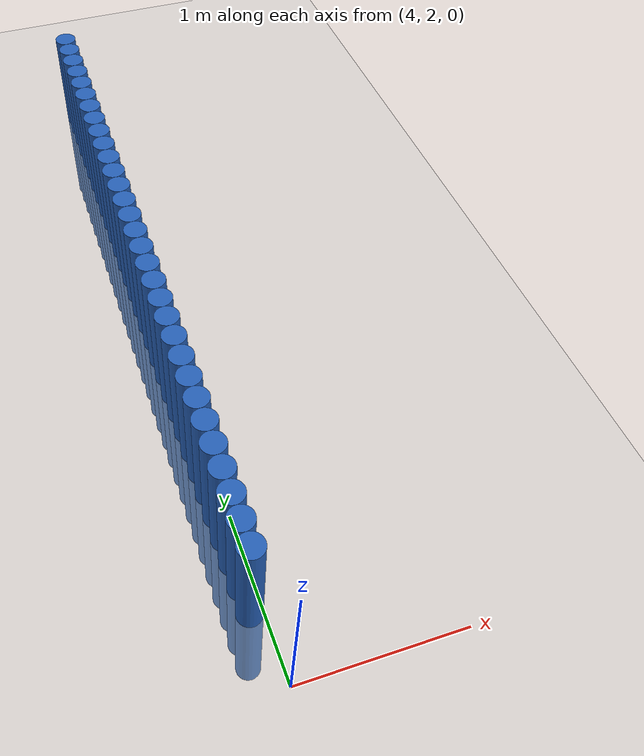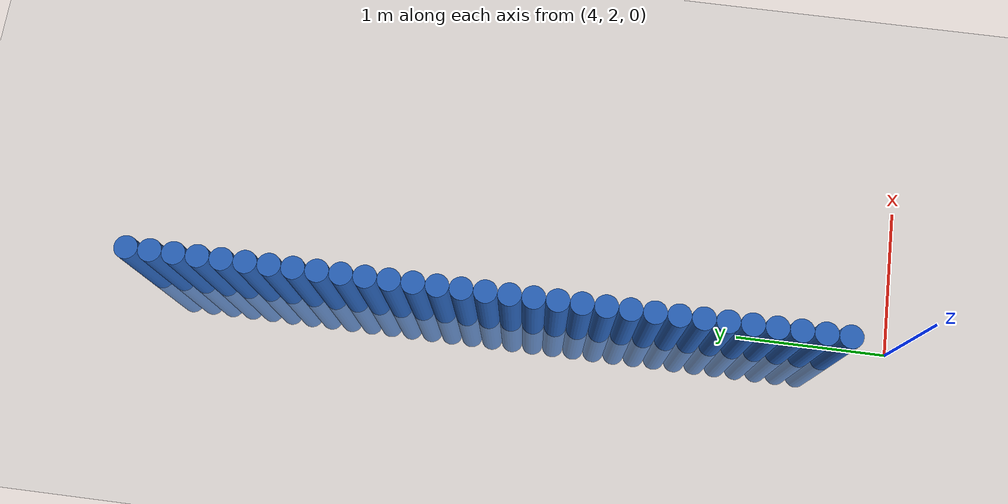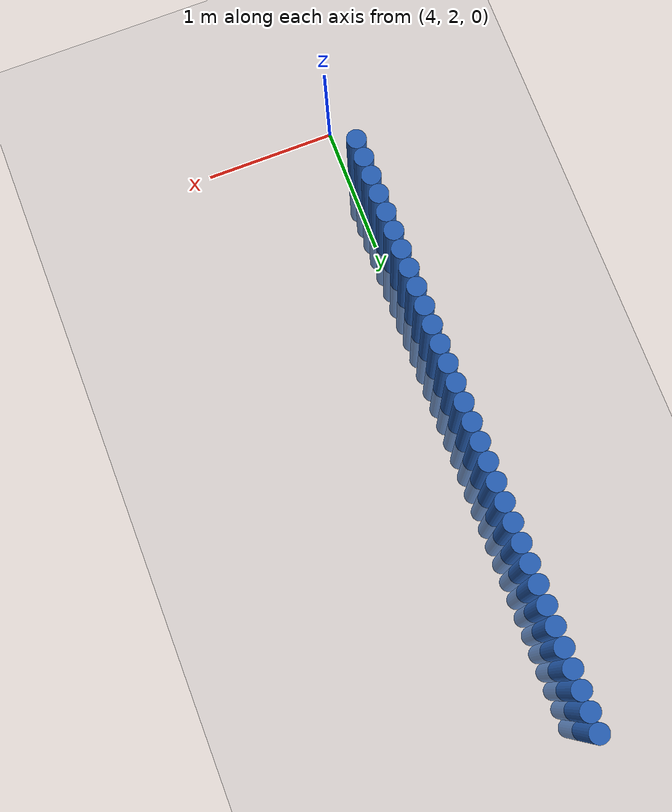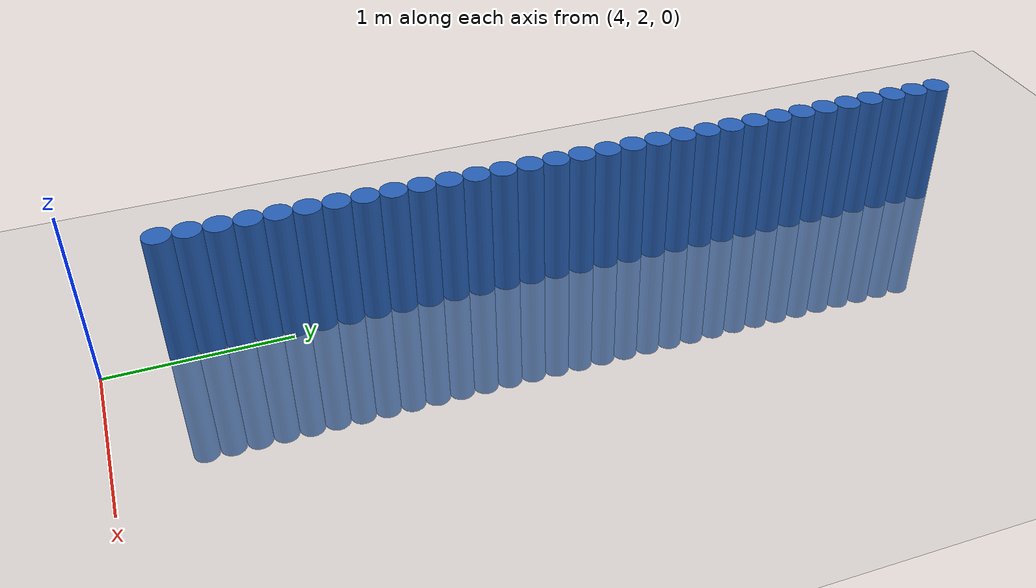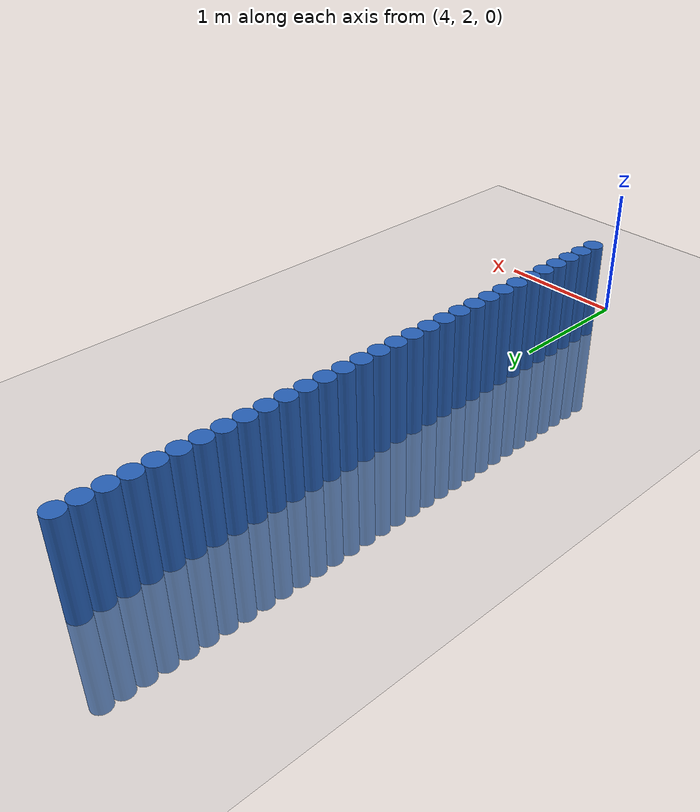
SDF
<sdf version="1.6">
 <world name="default">
  <model name="ground_plane">
   <static>1</static>
   <link name="link">
    <collision name="collision">
     <geometry><plane><normal>0 0 1</normal><size>100 100</size></plane></geometry>
     <surface><friction><ode><mu>100</mu><mu2>50</mu2></ode></friction></surface>
    </collision>
    <visual name="visual">
     <cast_shadows>0</cast_shadows>
     <geometry><plane><normal>0 0 1</normal><size>100 100</size></plane></geometry>
     <material>
      <script><uri>file://media/materials/scripts/gazebo.material</uri><name>Gazebo/Grey</name></script>
     </material>
    </visual>
   </link>
  </model>
  <model name="unit_cylinder_148">
   <static>1</static>
   <pose>3.925000 2.575000 0.000000 0.000000 0.000000 0.000000</pose>
   <link name="link">
    <inertial>
     <mass>1</mass>
     <inertia><ixx>0.145833</ixx><ixy>0</ixy><ixz>0</ixz><iyy>0.145833</iyy><iyz>0</iyz><izz>0.125</izz></inertia>
    </inertial>
    <collision name="collision">
     <geometry><cylinder><radius>0.075000</radius><length>1.5</length></cylinder></geometry>
    </collision>
    <visual name="visual">
     <geometry><cylinder><radius>0.075000</radius><length>1.5</length></cylinder></geometry>
     <material>
      <ambient>0.152000 0.379000 0.720000 1</ambient>
      <diffuse>0.152000 0.379000 0.720000 1</diffuse>
     </material>
     <material>
      <script><name>Gazebo/Grey</name><uri>file://media/materials/scripts/gazebo.material</uri></script>
     </material>
    </visual>
   </link>
  </model>
  <model name="unit_cylinder_150">
   <static>1</static>
   <pose>3.925000 2.725000 0.000000 0.000000 0.000000 0.000000</pose>
   <link name="link">
    <inertial>
     <mass>1</mass>
     <inertia><ixx>0.145833</ixx><ixy>0</ixy><ixz>0</ixz><iyy>0.145833</iyy><iyz>0</iyz><izz>0.125</izz></inertia>
    </inertial>
    <collision name="collision">
     <geometry><cylinder><radius>0.075000</radius><length>1.5</length></cylinder></geometry>
    </collision>
    <visual name="visual">
     <geometry><cylinder><radius>0.075000</radius><length>1.5</length></cylinder></geometry>
     <material>
      <ambient>0.152000 0.379000 0.720000 1</ambient>
      <diffuse>0.152000 0.379000 0.720000 1</diffuse>
     </material>
     <material>
      <script><name>Gazebo/Grey</name><uri>file://media/materials/scripts/gazebo.material</uri></script>
     </material>
    </visual>
   </link>
  </model>
  <model name="unit_cylinder_152">
   <static>1</static>
   <pose>3.925000 2.875000 0.000000 0.000000 0.000000 0.000000</pose>
   <link name="link">
    <inertial>
     <mass>1</mass>
     <inertia><ixx>0.145833</ixx><ixy>0</ixy><ixz>0</ixz><iyy>0.145833</iyy><iyz>0</iyz><izz>0.125</izz></inertia>
    </inertial>
    <collision name="collision">
     <geometry><cylinder><radius>0.075000</radius><length>1.5</length></cylinder></geometry>
    </collision>
    <visual name="visual">
     <geometry><cylinder><radius>0.075000</radius><length>1.5</length></cylinder></geometry>
     <material>
      <ambient>0.152000 0.379000 0.720000 1</ambient>
      <diffuse>0.152000 0.379000 0.720000 1</diffuse>
     </material>
     <material>
      <script><name>Gazebo/Grey</name><uri>file://media/materials/scripts/gazebo.material</uri></script>
     </material>
    </visual>
   </link>
  </model>
  <model name="unit_cylinder_154">
   <static>1</static>
   <pose>3.925000 3.025000 0.000000 0.000000 0.000000 0.000000</pose>
   <link name="link">
    <inertial>
     <mass>1</mass>
     <inertia><ixx>0.145833</ixx><ixy>0</ixy><ixz>0</ixz><iyy>0.145833</iyy><iyz>0</iyz><izz>0.125</izz></inertia>
    </inertial>
    <collision name="collision">
     <geometry><cylinder><radius>0.075000</radius><length>1.5</length></cylinder></geometry>
    </collision>
    <visual name="visual">
     <geometry><cylinder><radius>0.075000</radius><length>1.5</length></cylinder></geometry>
     <material>
      <ambient>0.152000 0.379000 0.720000 1</ambient>
      <diffuse>0.152000 0.379000 0.720000 1</diffuse>
     </material>
     <material>
      <script><name>Gazebo/Grey</name><uri>file://media/materials/scripts/gazebo.material</uri></script>
     </material>
    </visual>
   </link>
  </model>
  <model name="unit_cylinder_156">
   <static>1</static>
   <pose>3.925000 3.175000 0.000000 0.000000 0.000000 0.000000</pose>
   <link name="link">
    <inertial>
     <mass>1</mass>
     <inertia><ixx>0.145833</ixx><ixy>0</ixy><ixz>0</ixz><iyy>0.145833</iyy><iyz>0</iyz><izz>0.125</izz></inertia>
    </inertial>
    <collision name="collision">
     <geometry><cylinder><radius>0.075000</radius><length>1.5</length></cylinder></geometry>
    </collision>
    <visual name="visual">
     <geometry><cylinder><radius>0.075000</radius><length>1.5</length></cylinder></geometry>
     <material>
      <ambient>0.152000 0.379000 0.720000 1</ambient>
      <diffuse>0.152000 0.379000 0.720000 1</diffuse>
     </material>
     <material>
      <script><name>Gazebo/Grey</name><uri>file://media/materials/scripts/gazebo.material</uri></script>
     </material>
    </visual>
   </link>
  </model>
  <model name="unit_cylinder_158">
   <static>1</static>
   <pose>3.925000 3.325000 0.000000 0.000000 0.000000 0.000000</pose>
   <link name="link">
    <inertial>
     <mass>1</mass>
     <inertia><ixx>0.145833</ixx><ixy>0</ixy><ixz>0</ixz><iyy>0.145833</iyy><iyz>0</iyz><izz>0.125</izz></inertia>
    </inertial>
    <collision name="collision">
     <geometry><cylinder><radius>0.075000</radius><length>1.5</length></cylinder></geometry>
    </collision>
    <visual name="visual">
     <geometry><cylinder><radius>0.075000</radius><length>1.5</length></cylinder></geometry>
     <material>
      <ambient>0.152000 0.379000 0.720000 1</ambient>
      <diffuse>0.152000 0.379000 0.720000 1</diffuse>
     </material>
     <material>
      <script><name>Gazebo/Grey</name><uri>file://media/materials/scripts/gazebo.material</uri></script>
     </material>
    </visual>
   </link>
  </model>
  <model name="unit_cylinder_160">
   <static>1</static>
   <pose>3.925000 3.475000 0.000000 0.000000 0.000000 0.000000</pose>
   <link name="link">
    <inertial>
     <mass>1</mass>
     <inertia><ixx>0.145833</ixx><ixy>0</ixy><ixz>0</ixz><iyy>0.145833</iyy><iyz>0</iyz><izz>0.125</izz></inertia>
    </inertial>
    <collision name="collision">
     <geometry><cylinder><radius>0.075000</radius><length>1.5</length></cylinder></geometry>
    </collision>
    <visual name="visual">
     <geometry><cylinder><radius>0.075000</radius><length>1.5</length></cylinder></geometry>
     <material>
      <ambient>0.152000 0.379000 0.720000 1</ambient>
      <diffuse>0.152000 0.379000 0.720000 1</diffuse>
     </material>
     <material>
      <script><name>Gazebo/Grey</name><uri>file://media/materials/scripts/gazebo.material</uri></script>
     </material>
    </visual>
   </link>
  </model>
  <model name="unit_cylinder_162">
   <static>1</static>
   <pose>3.925000 3.625000 0.000000 0.000000 0.000000 0.000000</pose>
   <link name="link">
    <inertial>
     <mass>1</mass>
     <inertia><ixx>0.145833</ixx><ixy>0</ixy><ixz>0</ixz><iyy>0.145833</iyy><iyz>0</iyz><izz>0.125</izz></inertia>
    </inertial>
    <collision name="collision">
     <geometry><cylinder><radius>0.075000</radius><length>1.5</length></cylinder></geometry>
    </collision>
    <visual name="visual">
     <geometry><cylinder><radius>0.075000</radius><length>1.5</length></cylinder></geometry>
     <material>
      <ambient>0.152000 0.379000 0.720000 1</ambient>
      <diffuse>0.152000 0.379000 0.720000 1</diffuse>
     </material>
     <material>
      <script><name>Gazebo/Grey</name><uri>file://media/materials/scripts/gazebo.material</uri></script>
     </material>
    </visual>
   </link>
  </model>
  <model name="unit_cylinder_164">
   <static>1</static>
   <pose>3.925000 3.775000 0.000000 0.000000 0.000000 0.000000</pose>
   <link name="link">
    <inertial>
     <mass>1</mass>
     <inertia><ixx>0.145833</ixx><ixy>0</ixy><ixz>0</ixz><iyy>0.145833</iyy><iyz>0</iyz><izz>0.125</izz></inertia>
    </inertial>
    <collision name="collision">
     <geometry><cylinder><radius>0.075000</radius><length>1.5</length></cylinder></geometry>
    </collision>
    <visual name="visual">
     <geometry><cylinder><radius>0.075000</radius><length>1.5</length></cylinder></geometry>
     <material>
      <ambient>0.152000 0.379000 0.720000 1</ambient>
      <diffuse>0.152000 0.379000 0.720000 1</diffuse>
     </material>
     <material>
      <script><name>Gazebo/Grey</name><uri>file://media/materials/scripts/gazebo.material</uri></script>
     </material>
    </visual>
   </link>
  </model>
  <model name="unit_cylinder_166">
   <static>1</static>
   <pose>3.925000 3.925000 0.000000 0.000000 0.000000 0.000000</pose>
   <link name="link">
    <inertial>
     <mass>1</mass>
     <inertia><ixx>0.145833</ixx><ixy>0</ixy><ixz>0</ixz><iyy>0.145833</iyy><iyz>0</iyz><izz>0.125</izz></inertia>
    </inertial>
    <collision name="collision">
     <geometry><cylinder><radius>0.075000</radius><length>1.5</length></cylinder></geometry>
    </collision>
    <visual name="visual">
     <geometry><cylinder><radius>0.075000</radius><length>1.5</length></cylinder></geometry>
     <material>
      <ambient>0.152000 0.379000 0.720000 1</ambient>
      <diffuse>0.152000 0.379000 0.720000 1</diffuse>
     </material>
     <material>
      <script><name>Gazebo/Grey</name><uri>file://media/materials/scripts/gazebo.material</uri></script>
     </material>
    </visual>
   </link>
  </model>
  <model name="unit_cylinder_168">
   <static>1</static>
   <pose>3.925000 4.075000 0.000000 0.000000 0.000000 0.000000</pose>
   <link name="link">
    <inertial>
     <mass>1</mass>
     <inertia><ixx>0.145833</ixx><ixy>0</ixy><ixz>0</ixz><iyy>0.145833</iyy><iyz>0</iyz><izz>0.125</izz></inertia>
    </inertial>
    <collision name="collision">
     <geometry><cylinder><radius>0.075000</radius><length>1.5</length></cylinder></geometry>
    </collision>
    <visual name="visual">
     <geometry><cylinder><radius>0.075000</radius><length>1.5</length></cylinder></geometry>
     <material>
      <ambient>0.152000 0.379000 0.720000 1</ambient>
      <diffuse>0.152000 0.379000 0.720000 1</diffuse>
     </material>
     <material>
      <script><name>Gazebo/Grey</name><uri>file://media/materials/scripts/gazebo.material</uri></script>
     </material>
    </visual>
   </link>
  </model>
  <model name="unit_cylinder_170">
   <static>1</static>
   <pose>3.925000 4.225000 0.000000 0.000000 0.000000 0.000000</pose>
   <link name="link">
    <inertial>
     <mass>1</mass>
     <inertia><ixx>0.145833</ixx><ixy>0</ixy><ixz>0</ixz><iyy>0.145833</iyy><iyz>0</iyz><izz>0.125</izz></inertia>
    </inertial>
    <collision name="collision">
     <geometry><cylinder><radius>0.075000</radius><length>1.5</length></cylinder></geometry>
    </collision>
    <visual name="visual">
     <geometry><cylinder><radius>0.075000</radius><length>1.5</length></cylinder></geometry>
     <material>
      <ambient>0.152000 0.379000 0.720000 1</ambient>
      <diffuse>0.152000 0.379000 0.720000 1</diffuse>
     </material>
     <material>
      <script><name>Gazebo/Grey</name><uri>file://media/materials/scripts/gazebo.material</uri></script>
     </material>
    </visual>
   </link>
  </model>
  <model name="unit_cylinder_172">
   <static>1</static>
   <pose>3.925000 4.375000 0.000000 0.000000 0.000000 0.000000</pose>
   <link name="link">
    <inertial>
     <mass>1</mass>
     <inertia><ixx>0.145833</ixx><ixy>0</ixy><ixz>0</ixz><iyy>0.145833</iyy><iyz>0</iyz><izz>0.125</izz></inertia>
    </inertial>
    <collision name="collision">
     <geometry><cylinder><radius>0.075000</radius><length>1.5</length></cylinder></geometry>
    </collision>
    <visual name="visual">
     <geometry><cylinder><radius>0.075000</radius><length>1.5</length></cylinder></geometry>
     <material>
      <ambient>0.152000 0.379000 0.720000 1</ambient>
      <diffuse>0.152000 0.379000 0.720000 1</diffuse>
     </material>
     <material>
      <script><name>Gazebo/Grey</name><uri>file://media/materials/scripts/gazebo.material</uri></script>
     </material>
    </visual>
   </link>
  </model>
  <model name="unit_cylinder_174">
   <static>1</static>
   <pose>3.925000 4.525000 0.000000 0.000000 0.000000 0.000000</pose>
   <link name="link">
    <inertial>
     <mass>1</mass>
     <inertia><ixx>0.145833</ixx><ixy>0</ixy><ixz>0</ixz><iyy>0.145833</iyy><iyz>0</iyz><izz>0.125</izz></inertia>
    </inertial>
    <collision name="collision">
     <geometry><cylinder><radius>0.075000</radius><length>1.5</length></cylinder></geometry>
    </collision>
    <visual name="visual">
     <geometry><cylinder><radius>0.075000</radius><length>1.5</length></cylinder></geometry>
     <material>
      <ambient>0.152000 0.379000 0.720000 1</ambient>
      <diffuse>0.152000 0.379000 0.720000 1</diffuse>
     </material>
     <material>
      <script><name>Gazebo/Grey</name><uri>file://media/materials/scripts/gazebo.material</uri></script>
     </material>
    </visual>
   </link>
  </model>
  <model name="unit_cylinder_176">
   <static>1</static>
   <pose>3.925000 4.675000 0.000000 0.000000 0.000000 0.000000</pose>
   <link name="link">
    <inertial>
     <mass>1</mass>
     <inertia><ixx>0.145833</ixx><ixy>0</ixy><ixz>0</ixz><iyy>0.145833</iyy><iyz>0</iyz><izz>0.125</izz></inertia>
    </inertial>
    <collision name="collision">
     <geometry><cylinder><radius>0.075000</radius><length>1.5</length></cylinder></geometry>
    </collision>
    <visual name="visual">
     <geometry><cylinder><radius>0.075000</radius><length>1.5</length></cylinder></geometry>
     <material>
      <ambient>0.152000 0.379000 0.720000 1</ambient>
      <diffuse>0.152000 0.379000 0.720000 1</diffuse>
     </material>
     <material>
      <script><name>Gazebo/Grey</name><uri>file://media/materials/scripts/gazebo.material</uri></script>
     </material>
    </visual>
   </link>
  </model>
  <model name="unit_cylinder_178">
   <static>1</static>
   <pose>3.925000 4.825000 0.000000 0.000000 0.000000 0.000000</pose>
   <link name="link">
    <inertial>
     <mass>1</mass>
     <inertia><ixx>0.145833</ixx><ixy>0</ixy><ixz>0</ixz><iyy>0.145833</iyy><iyz>0</iyz><izz>0.125</izz></inertia>
    </inertial>
    <collision name="collision">
     <geometry><cylinder><radius>0.075000</radius><length>1.5</length></cylinder></geometry>
    </collision>
    <visual name="visual">
     <geometry><cylinder><radius>0.075000</radius><length>1.5</length></cylinder></geometry>
     <material>
      <ambient>0.152000 0.379000 0.720000 1</ambient>
      <diffuse>0.152000 0.379000 0.720000 1</diffuse>
     </material>
     <material>
      <script><name>Gazebo/Grey</name><uri>file://media/materials/scripts/gazebo.material</uri></script>
     </material>
    </visual>
   </link>
  </model>
  <model name="unit_cylinder_180">
   <static>1</static>
   <pose>3.925000 4.975000 0.000000 0.000000 0.000000 0.000000</pose>
   <link name="link">
    <inertial>
     <mass>1</mass>
     <inertia><ixx>0.145833</ixx><ixy>0</ixy><ixz>0</ixz><iyy>0.145833</iyy><iyz>0</iyz><izz>0.125</izz></inertia>
    </inertial>
    <collision name="collision">
     <geometry><cylinder><radius>0.075000</radius><length>1.5</length></cylinder></geometry>
    </collision>
    <visual name="visual">
     <geometry><cylinder><radius>0.075000</radius><length>1.5</length></cylinder></geometry>
     <material>
      <ambient>0.152000 0.379000 0.720000 1</ambient>
      <diffuse>0.152000 0.379000 0.720000 1</diffuse>
     </material>
     <material>
      <script><name>Gazebo/Grey</name><uri>file://media/materials/scripts/gazebo.material</uri></script>
     </material>
    </visual>
   </link>
  </model>
  <model name="unit_cylinder_182">
   <static>1</static>
   <pose>3.925000 5.125000 0.000000 0.000000 0.000000 0.000000</pose>
   <link name="link">
    <inertial>
     <mass>1</mass>
     <inertia><ixx>0.145833</ixx><ixy>0</ixy><ixz>0</ixz><iyy>0.145833</iyy><iyz>0</iyz><izz>0.125</izz></inertia>
    </inertial>
    <collision name="collision">
     <geometry><cylinder><radius>0.075000</radius><length>1.5</length></cylinder></geometry>
    </collision>
    <visual name="visual">
     <geometry><cylinder><radius>0.075000</radius><length>1.5</length></cylinder></geometry>
     <material>
      <ambient>0.152000 0.379000 0.720000 1</ambient>
      <diffuse>0.152000 0.379000 0.720000 1</diffuse>
     </material>
     <material>
      <script><name>Gazebo/Grey</name><uri>file://media/materials/scripts/gazebo.material</uri></script>
     </material>
    </visual>
   </link>
  </model>
  <model name="unit_cylinder_184">
   <static>1</static>
   <pose>3.925000 5.275000 0.000000 0.000000 0.000000 0.000000</pose>
   <link name="link">
    <inertial>
     <mass>1</mass>
     <inertia><ixx>0.145833</ixx><ixy>0</ixy><ixz>0</ixz><iyy>0.145833</iyy><iyz>0</iyz><izz>0.125</izz></inertia>
    </inertial>
    <collision name="collision">
     <geometry><cylinder><radius>0.075000</radius><length>1.5</length></cylinder></geometry>
    </collision>
    <visual name="visual">
     <geometry><cylinder><radius>0.075000</radius><length>1.5</length></cylinder></geometry>
     <material>
      <ambient>0.152000 0.379000 0.720000 1</ambient>
      <diffuse>0.152000 0.379000 0.720000 1</diffuse>
     </material>
     <material>
      <script><name>Gazebo/Grey</name><uri>file://media/materials/scripts/gazebo.material</uri></script>
     </material>
    </visual>
   </link>
  </model>
  <model name="unit_cylinder_186">
   <static>1</static>
   <pose>3.925000 5.425000 0.000000 0.000000 0.000000 0.000000</pose>
   <link name="link">
    <inertial>
     <mass>1</mass>
     <inertia><ixx>0.145833</ixx><ixy>0</ixy><ixz>0</ixz><iyy>0.145833</iyy><iyz>0</iyz><izz>0.125</izz></inertia>
    </inertial>
    <collision name="collision">
     <geometry><cylinder><radius>0.075000</radius><length>1.5</length></cylinder></geometry>
    </collision>
    <visual name="visual">
     <geometry><cylinder><radius>0.075000</radius><length>1.5</length></cylinder></geometry>
     <material>
      <ambient>0.152000 0.379000 0.720000 1</ambient>
      <diffuse>0.152000 0.379000 0.720000 1</diffuse>
     </material>
     <material>
      <script><name>Gazebo/Grey</name><uri>file://media/materials/scripts/gazebo.material</uri></script>
     </material>
    </visual>
   </link>
  </model>
  <model name="unit_cylinder_188">
   <static>1</static>
   <pose>3.925000 5.575000 0.000000 0.000000 0.000000 0.000000</pose>
   <link name="link">
    <inertial>
     <mass>1</mass>
     <inertia><ixx>0.145833</ixx><ixy>0</ixy><ixz>0</ixz><iyy>0.145833</iyy><iyz>0</iyz><izz>0.125</izz></inertia>
    </inertial>
    <collision name="collision">
     <geometry><cylinder><radius>0.075000</radius><length>1.5</length></cylinder></geometry>
    </collision>
    <visual name="visual">
     <geometry><cylinder><radius>0.075000</radius><length>1.5</length></cylinder></geometry>
     <material>
      <ambient>0.152000 0.379000 0.720000 1</ambient>
      <diffuse>0.152000 0.379000 0.720000 1</diffuse>
     </material>
     <material>
      <script><name>Gazebo/Grey</name><uri>file://media/materials/scripts/gazebo.material</uri></script>
     </material>
    </visual>
   </link>
  </model>
  <model name="unit_cylinder_190">
   <static>1</static>
   <pose>3.925000 5.725000 0.000000 0.000000 0.000000 0.000000</pose>
   <link name="link">
    <inertial>
     <mass>1</mass>
     <inertia><ixx>0.145833</ixx><ixy>0</ixy><ixz>0</ixz><iyy>0.145833</iyy><iyz>0</iyz><izz>0.125</izz></inertia>
    </inertial>
    <collision name="collision">
     <geometry><cylinder><radius>0.075000</radius><length>1.5</length></cylinder></geometry>
    </collision>
    <visual name="visual">
     <geometry><cylinder><radius>0.075000</radius><length>1.5</length></cylinder></geometry>
     <material>
      <ambient>0.152000 0.379000 0.720000 1</ambient>
      <diffuse>0.152000 0.379000 0.720000 1</diffuse>
     </material>
     <material>
      <script><name>Gazebo/Grey</name><uri>file://media/materials/scripts/gazebo.material</uri></script>
     </material>
    </visual>
   </link>
  </model>
  <model name="unit_cylinder_192">
   <static>1</static>
   <pose>3.925000 5.875000 0.000000 0.000000 0.000000 0.000000</pose>
   <link name="link">
    <inertial>
     <mass>1</mass>
     <inertia><ixx>0.145833</ixx><ixy>0</ixy><ixz>0</ixz><iyy>0.145833</iyy><iyz>0</iyz><izz>0.125</izz></inertia>
    </inertial>
    <collision name="collision">
     <geometry><cylinder><radius>0.075000</radius><length>1.5</length></cylinder></geometry>
    </collision>
    <visual name="visual">
     <geometry><cylinder><radius>0.075000</radius><length>1.5</length></cylinder></geometry>
     <material>
      <ambient>0.152000 0.379000 0.720000 1</ambient>
      <diffuse>0.152000 0.379000 0.720000 1</diffuse>
     </material>
     <material>
      <script><name>Gazebo/Grey</name><uri>file://media/materials/scripts/gazebo.material</uri></script>
     </material>
    </visual>
   </link>
  </model>
  <model name="unit_cylinder_194">
   <static>1</static>
   <pose>3.925000 6.025000 0.000000 0.000000 0.000000 0.000000</pose>
   <link name="link">
    <inertial>
     <mass>1</mass>
     <inertia><ixx>0.145833</ixx><ixy>0</ixy><ixz>0</ixz><iyy>0.145833</iyy><iyz>0</iyz><izz>0.125</izz></inertia>
    </inertial>
    <collision name="collision">
     <geometry><cylinder><radius>0.075000</radius><length>1.5</length></cylinder></geometry>
    </collision>
    <visual name="visual">
     <geometry><cylinder><radius>0.075000</radius><length>1.5</length></cylinder></geometry>
     <material>
      <ambient>0.152000 0.379000 0.720000 1</ambient>
      <diffuse>0.152000 0.379000 0.720000 1</diffuse>
     </material>
     <material>
      <script><name>Gazebo/Grey</name><uri>file://media/materials/scripts/gazebo.material</uri></script>
     </material>
    </visual>
   </link>
  </model>
  <model name="unit_cylinder_196">
   <static>1</static>
   <pose>3.925000 6.175000 0.000000 0.000000 0.000000 0.000000</pose>
   <link name="link">
    <inertial>
     <mass>1</mass>
     <inertia><ixx>0.145833</ixx><ixy>0</ixy><ixz>0</ixz><iyy>0.145833</iyy><iyz>0</iyz><izz>0.125</izz></inertia>
    </inertial>
    <collision name="collision">
     <geometry><cylinder><radius>0.075000</radius><length>1.5</length></cylinder></geometry>
    </collision>
    <visual name="visual">
     <geometry><cylinder><radius>0.075000</radius><length>1.5</length></cylinder></geometry>
     <material>
      <ambient>0.152000 0.379000 0.720000 1</ambient>
      <diffuse>0.152000 0.379000 0.720000 1</diffuse>
     </material>
     <material>
      <script><name>Gazebo/Grey</name><uri>file://media/materials/scripts/gazebo.material</uri></script>
     </material>
    </visual>
   </link>
  </model>
  <model name="unit_cylinder_198">
   <static>1</static>
   <pose>3.925000 6.325000 0.000000 0.000000 0.000000 0.000000</pose>
   <link name="link">
    <inertial>
     <mass>1</mass>
     <inertia><ixx>0.145833</ixx><ixy>0</ixy><ixz>0</ixz><iyy>0.145833</iyy><iyz>0</iyz><izz>0.125</izz></inertia>
    </inertial>
    <collision name="collision">
     <geometry><cylinder><radius>0.075000</radius><length>1.5</length></cylinder></geometry>
    </collision>
    <visual name="visual">
     <geometry><cylinder><radius>0.075000</radius><length>1.5</length></cylinder></geometry>
     <material>
      <ambient>0.152000 0.379000 0.720000 1</ambient>
      <diffuse>0.152000 0.379000 0.720000 1</diffuse>
     </material>
     <material>
      <script><name>Gazebo/Grey</name><uri>file://media/materials/scripts/gazebo.material</uri></script>
     </material>
    </visual>
   </link>
  </model>
  <model name="unit_cylinder_200">
   <static>1</static>
   <pose>3.925000 6.475000 0.000000 0.000000 0.000000 0.000000</pose>
   <link name="link">
    <inertial>
     <mass>1</mass>
     <inertia><ixx>0.145833</ixx><ixy>0</ixy><ixz>0</ixz><iyy>0.145833</iyy><iyz>0</iyz><izz>0.125</izz></inertia>
    </inertial>
    <collision name="collision">
     <geometry><cylinder><radius>0.075000</radius><length>1.5</length></cylinder></geometry>
    </collision>
    <visual name="visual">
     <geometry><cylinder><radius>0.075000</radius><length>1.5</length></cylinder></geometry>
     <material>
      <ambient>0.152000 0.379000 0.720000 1</ambient>
      <diffuse>0.152000 0.379000 0.720000 1</diffuse>
     </material>
     <material>
      <script><name>Gazebo/Grey</name><uri>file://media/materials/scripts/gazebo.material</uri></script>
     </material>
    </visual>
   </link>
  </model>
  <model name="unit_cylinder_202">
   <static>1</static>
   <pose>3.925000 6.625000 0.000000 0.000000 0.000000 0.000000</pose>
   <link name="link">
    <inertial>
     <mass>1</mass>
     <inertia><ixx>0.145833</ixx><ixy>0</ixy><ixz>0</ixz><iyy>0.145833</iyy><iyz>0</iyz><izz>0.125</izz></inertia>
    </inertial>
    <collision name="collision">
     <geometry><cylinder><radius>0.075000</radius><length>1.5</length></cylinder></geometry>
    </collision>
    <visual name="visual">
     <geometry><cylinder><radius>0.075000</radius><length>1.5</length></cylinder></geometry>
     <material>
      <ambient>0.152000 0.379000 0.720000 1</ambient>
      <diffuse>0.152000 0.379000 0.720000 1</diffuse>
     </material>
     <material>
      <script><name>Gazebo/Grey</name><uri>file://media/materials/scripts/gazebo.material</uri></script>
     </material>
    </visual>
   </link>
  </model>
  <model name="unit_cylinder_204">
   <static>1</static>
   <pose>3.925000 6.775000 0.000000 0.000000 0.000000 0.000000</pose>
   <link name="link">
    <inertial>
     <mass>1</mass>
     <inertia><ixx>0.145833</ixx><ixy>0</ixy><ixz>0</ixz><iyy>0.145833</iyy><iyz>0</iyz><izz>0.125</izz></inertia>
    </inertial>
    <collision name="collision">
     <geometry><cylinder><radius>0.075000</radius><length>1.5</length></cylinder></geometry>
    </collision>
    <visual name="visual">
     <geometry><cylinder><radius>0.075000</radius><length>1.5</length></cylinder></geometry>
     <material>
      <ambient>0.152000 0.379000 0.720000 1</ambient>
      <diffuse>0.152000 0.379000 0.720000 1</diffuse>
     </material>
     <material>
      <script><name>Gazebo/Grey</name><uri>file://media/materials/scripts/gazebo.material</uri></script>
     </material>
    </visual>
   </link>
  </model>
  <model name="unit_cylinder_206">
   <static>1</static>
   <pose>3.925000 6.925000 0.000000 0.000000 0.000000 0.000000</pose>
   <link name="link">
    <inertial>
     <mass>1</mass>
     <inertia><ixx>0.145833</ixx><ixy>0</ixy><ixz>0</ixz><iyy>0.145833</iyy><iyz>0</iyz><izz>0.125</izz></inertia>
    </inertial>
    <collision name="collision">
     <geometry><cylinder><radius>0.075000</radius><length>1.5</length></cylinder></geometry>
    </collision>
    <visual name="visual">
     <geometry><cylinder><radius>0.075000</radius><length>1.5</length></cylinder></geometry>
     <material>
      <ambient>0.152000 0.379000 0.720000 1</ambient>
      <diffuse>0.152000 0.379000 0.720000 1</diffuse>
     </material>
     <material>
      <script><name>Gazebo/Grey</name><uri>file://media/materials/scripts/gazebo.material</uri></script>
     </material>
    </visual>
   </link>
  </model>
  <model name="unit_cylinder_540">
   <static>1</static>
   <pose>3.925000 2.425000 0.000000 0.000000 0.000000 0.000000</pose>
   <link name="link">
    <inertial>
     <mass>1</mass>
     <inertia><ixx>0.145833</ixx><ixy>0</ixy><ixz>0</ixz><iyy>0.145833</iyy><iyz>0</iyz><izz>0.125</izz></inertia>
    </inertial>
    <collision name="collision">
     <geometry><cylinder><radius>0.075000</radius><length>1.5</length></cylinder></geometry>
    </collision>
    <visual name="visual">
     <geometry><cylinder><radius>0.075000</radius><length>1.5</length></cylinder></geometry>
     <material>
      <ambient>0.152000 0.379000 0.720000 1</ambient>
      <diffuse>0.152000 0.379000 0.720000 1</diffuse>
     </material>
     <material>
      <script><name>Gazebo/Grey</name><uri>file://media/materials/scripts/gazebo.material</uri></script>
     </material>
    </visual>
   </link>
  </model>
  <model name="unit_cylinder_541">
   <static>1</static>
   <pose>3.925000 2.575000 0.000000 0.000000 0.000000 0.000000</pose>
   <link name="link">
    <inertial>
     <mass>1</mass>
     <inertia><ixx>0.145833</ixx><ixy>0</ixy><ixz>0</ixz><iyy>0.145833</iyy><iyz>0</iyz><izz>0.125</izz></inertia>
    </inertial>
    <collision name="collision">
     <geometry><cylinder><radius>0.075000</radius><length>1.5</length></cylinder></geometry>
    </collision>
    <visual name="visual">
     <geometry><cylinder><radius>0.075000</radius><length>1.5</length></cylinder></geometry>
     <material>
      <ambient>0.152000 0.379000 0.720000 1</ambient>
      <diffuse>0.152000 0.379000 0.720000 1</diffuse>
     </material>
     <material>
      <script><name>Gazebo/Grey</name><uri>file://media/materials/scripts/gazebo.material</uri></script>
     </material>
    </visual>
   </link>
  </model>
  <model name="unit_cylinder_542">
   <static>1</static>
   <pose>3.925000 2.725000 0.000000 0.000000 0.000000 0.000000</pose>
   <link name="link">
    <inertial>
     <mass>1</mass>
     <inertia><ixx>0.145833</ixx><ixy>0</ixy><ixz>0</ixz><iyy>0.145833</iyy><iyz>0</iyz><izz>0.125</izz></inertia>
    </inertial>
    <collision name="collision">
     <geometry><cylinder><radius>0.075000</radius><length>1.5</length></cylinder></geometry>
    </collision>
    <visual name="visual">
     <geometry><cylinder><radius>0.075000</radius><length>1.5</length></cylinder></geometry>
     <material>
      <ambient>0.152000 0.379000 0.720000 1</ambient>
      <diffuse>0.152000 0.379000 0.720000 1</diffuse>
     </material>
     <material>
      <script><name>Gazebo/Grey</name><uri>file://media/materials/scripts/gazebo.material</uri></script>
     </material>
    </visual>
   </link>
  </model>
  <model name="unit_cylinder_543">
   <static>1</static>
   <pose>3.925000 2.875000 0.000000 0.000000 0.000000 0.000000</pose>
   <link name="link">
    <inertial>
     <mass>1</mass>
     <inertia><ixx>0.145833</ixx><ixy>0</ixy><ixz>0</ixz><iyy>0.145833</iyy><iyz>0</iyz><izz>0.125</izz></inertia>
    </inertial>
    <collision name="collision">
     <geometry><cylinder><radius>0.075000</radius><length>1.5</length></cylinder></geometry>
    </collision>
    <visual name="visual">
     <geometry><cylinder><radius>0.075000</radius><length>1.5</length></cylinder></geometry>
     <material>
      <ambient>0.152000 0.379000 0.720000 1</ambient>
      <diffuse>0.152000 0.379000 0.720000 1</diffuse>
     </material>
     <material>
      <script><name>Gazebo/Grey</name><uri>file://media/materials/scripts/gazebo.material</uri></script>
     </material>
    </visual>
   </link>
  </model>
  <model name="unit_cylinder_544">
   <static>1</static>
   <pose>3.925000 3.025000 0.000000 0.000000 0.000000 0.000000</pose>
   <link name="link">
    <inertial>
     <mass>1</mass>
     <inertia><ixx>0.145833</ixx><ixy>0</ixy><ixz>0</ixz><iyy>0.145833</iyy><iyz>0</iyz><izz>0.125</izz></inertia>
    </inertial>
    <collision name="collision">
     <geometry><cylinder><radius>0.075000</radius><length>1.5</length></cylinder></geometry>
    </collision>
    <visual name="visual">
     <geometry><cylinder><radius>0.075000</radius><length>1.5</length></cylinder></geometry>
     <material>
      <ambient>0.152000 0.379000 0.720000 1</ambient>
      <diffuse>0.152000 0.379000 0.720000 1</diffuse>
     </material>
     <material>
      <script><name>Gazebo/Grey</name><uri>file://media/materials/scripts/gazebo.material</uri></script>
     </material>
    </visual>
   </link>
  </model>
  <model name="unit_cylinder_545">
   <static>1</static>
   <pose>3.925000 3.175000 0.000000 0.000000 0.000000 0.000000</pose>
   <link name="link">
    <inertial>
     <mass>1</mass>
     <inertia><ixx>0.145833</ixx><ixy>0</ixy><ixz>0</ixz><iyy>0.145833</iyy><iyz>0</iyz><izz>0.125</izz></inertia>
    </inertial>
    <collision name="collision">
     <geometry><cylinder><radius>0.075000</radius><length>1.5</length></cylinder></geometry>
    </collision>
    <visual name="visual">
     <geometry><cylinder><radius>0.075000</radius><length>1.5</length></cylinder></geometry>
     <material>
      <ambient>0.152000 0.379000 0.720000 1</ambient>
      <diffuse>0.152000 0.379000 0.720000 1</diffuse>
     </material>
     <material>
      <script><name>Gazebo/Grey</name><uri>file://media/materials/scripts/gazebo.material</uri></script>
     </material>
    </visual>
   </link>
  </model>
  <model name="unit_cylinder_546">
   <static>1</static>
   <pose>3.925000 3.325000 0.000000 0.000000 0.000000 0.000000</pose>
   <link name="link">
    <inertial>
     <mass>1</mass>
     <inertia><ixx>0.145833</ixx><ixy>0</ixy><ixz>0</ixz><iyy>0.145833</iyy><iyz>0</iyz><izz>0.125</izz></inertia>
    </inertial>
    <collision name="collision">
     <geometry><cylinder><radius>0.075000</radius><length>1.5</length></cylinder></geometry>
    </collision>
    <visual name="visual">
     <geometry><cylinder><radius>0.075000</radius><length>1.5</length></cylinder></geometry>
     <material>
      <ambient>0.152000 0.379000 0.720000 1</ambient>
      <diffuse>0.152000 0.379000 0.720000 1</diffuse>
     </material>
     <material>
      <script><name>Gazebo/Grey</name><uri>file://media/materials/scripts/gazebo.material</uri></script>
     </material>
    </visual>
   </link>
  </model>
  <model name="unit_cylinder_547">
   <static>1</static>
   <pose>3.925000 3.475000 0.000000 0.000000 0.000000 0.000000</pose>
   <link name="link">
    <inertial>
     <mass>1</mass>
     <inertia><ixx>0.145833</ixx><ixy>0</ixy><ixz>0</ixz><iyy>0.145833</iyy><iyz>0</iyz><izz>0.125</izz></inertia>
    </inertial>
    <collision name="collision">
     <geometry><cylinder><radius>0.075000</radius><length>1.5</length></cylinder></geometry>
    </collision>
    <visual name="visual">
     <geometry><cylinder><radius>0.075000</radius><length>1.5</length></cylinder></geometry>
     <material>
      <ambient>0.152000 0.379000 0.720000 1</ambient>
      <diffuse>0.152000 0.379000 0.720000 1</diffuse>
     </material>
     <material>
      <script><name>Gazebo/Grey</name><uri>file://media/materials/scripts/gazebo.material</uri></script>
     </material>
    </visual>
   </link>
  </model>
  <model name="unit_cylinder_548">
   <static>1</static>
   <pose>3.925000 3.625000 0.000000 0.000000 0.000000 0.000000</pose>
   <link name="link">
    <inertial>
     <mass>1</mass>
     <inertia><ixx>0.145833</ixx><ixy>0</ixy><ixz>0</ixz><iyy>0.145833</iyy><iyz>0</iyz><izz>0.125</izz></inertia>
    </inertial>
    <collision name="collision">
     <geometry><cylinder><radius>0.075000</radius><length>1.5</length></cylinder></geometry>
    </collision>
    <visual name="visual">
     <geometry><cylinder><radius>0.075000</radius><length>1.5</length></cylinder></geometry>
     <material>
      <ambient>0.152000 0.379000 0.720000 1</ambient>
      <diffuse>0.152000 0.379000 0.720000 1</diffuse>
     </material>
     <material>
      <script><name>Gazebo/Grey</name><uri>file://media/materials/scripts/gazebo.material</uri></script>
     </material>
    </visual>
   </link>
  </model>
  <model name="unit_cylinder_549">
   <static>1</static>
   <pose>3.925000 3.775000 0.000000 0.000000 0.000000 0.000000</pose>
   <link name="link">
    <inertial>
     <mass>1</mass>
     <inertia><ixx>0.145833</ixx><ixy>0</ixy><ixz>0</ixz><iyy>0.145833</iyy><iyz>0</iyz><izz>0.125</izz></inertia>
    </inertial>
    <collision name="collision">
     <geometry><cylinder><radius>0.075000</radius><length>1.5</length></cylinder></geometry>
    </collision>
    <visual name="visual">
     <geometry><cylinder><radius>0.075000</radius><length>1.5</length></cylinder></geometry>
     <material>
      <ambient>0.152000 0.379000 0.720000 1</ambient>
      <diffuse>0.152000 0.379000 0.720000 1</diffuse>
     </material>
     <material>
      <script><name>Gazebo/Grey</name><uri>file://media/materials/scripts/gazebo.material</uri></script>
     </material>
    </visual>
   </link>
  </model>
  <model name="unit_cylinder_550">
   <static>1</static>
   <pose>3.925000 3.925000 0.000000 0.000000 0.000000 0.000000</pose>
   <link name="link">
    <inertial>
     <mass>1</mass>
     <inertia><ixx>0.145833</ixx><ixy>0</ixy><ixz>0</ixz><iyy>0.145833</iyy><iyz>0</iyz><izz>0.125</izz></inertia>
    </inertial>
    <collision name="collision">
     <geometry><cylinder><radius>0.075000</radius><length>1.5</length></cylinder></geometry>
    </collision>
    <visual name="visual">
     <geometry><cylinder><radius>0.075000</radius><length>1.5</length></cylinder></geometry>
     <material>
      <ambient>0.152000 0.379000 0.720000 1</ambient>
      <diffuse>0.152000 0.379000 0.720000 1</diffuse>
     </material>
     <material>
      <script><name>Gazebo/Grey</name><uri>file://media/materials/scripts/gazebo.material</uri></script>
     </material>
    </visual>
   </link>
  </model>
  <model name="unit_cylinder_551">
   <static>1</static>
   <pose>3.925000 4.075000 0.000000 0.000000 0.000000 0.000000</pose>
   <link name="link">
    <inertial>
     <mass>1</mass>
     <inertia><ixx>0.145833</ixx><ixy>0</ixy><ixz>0</ixz><iyy>0.145833</iyy><iyz>0</iyz><izz>0.125</izz></inertia>
    </inertial>
    <collision name="collision">
     <geometry><cylinder><radius>0.075000</radius><length>1.5</length></cylinder></geometry>
    </collision>
    <visual name="visual">
     <geometry><cylinder><radius>0.075000</radius><length>1.5</length></cylinder></geometry>
     <material>
      <ambient>0.152000 0.379000 0.720000 1</ambient>
      <diffuse>0.152000 0.379000 0.720000 1</diffuse>
     </material>
     <material>
      <script><name>Gazebo/Grey</name><uri>file://media/materials/scripts/gazebo.material</uri></script>
     </material>
    </visual>
   </link>
  </model>
  <model name="unit_cylinder_552">
   <static>1</static>
   <pose>3.925000 4.225000 0.000000 0.000000 0.000000 0.000000</pose>
   <link name="link">
    <inertial>
     <mass>1</mass>
     <inertia><ixx>0.145833</ixx><ixy>0</ixy><ixz>0</ixz><iyy>0.145833</iyy><iyz>0</iyz><izz>0.125</izz></inertia>
    </inertial>
    <collision name="collision">
     <geometry><cylinder><radius>0.075000</radius><length>1.5</length></cylinder></geometry>
    </collision>
    <visual name="visual">
     <geometry><cylinder><radius>0.075000</radius><length>1.5</length></cylinder></geometry>
     <material>
      <ambient>0.152000 0.379000 0.720000 1</ambient>
      <diffuse>0.152000 0.379000 0.720000 1</diffuse>
     </material>
     <material>
      <script><name>Gazebo/Grey</name><uri>file://media/materials/scripts/gazebo.material</uri></script>
     </material>
    </visual>
   </link>
  </model>
  <model name="unit_cylinder_553">
   <static>1</static>
   <pose>3.925000 4.375000 0.000000 0.000000 0.000000 0.000000</pose>
   <link name="link">
    <inertial>
     <mass>1</mass>
     <inertia><ixx>0.145833</ixx><ixy>0</ixy><ixz>0</ixz><iyy>0.145833</iyy><iyz>0</iyz><izz>0.125</izz></inertia>
    </inertial>
    <collision name="collision">
     <geometry><cylinder><radius>0.075000</radius><length>1.5</length></cylinder></geometry>
    </collision>
    <visual name="visual">
     <geometry><cylinder><radius>0.075000</radius><length>1.5</length></cylinder></geometry>
     <material>
      <ambient>0.152000 0.379000 0.720000 1</ambient>
      <diffuse>0.152000 0.379000 0.720000 1</diffuse>
     </material>
     <material>
      <script><name>Gazebo/Grey</name><uri>file://media/materials/scripts/gazebo.material</uri></script>
     </material>
    </visual>
   </link>
  </model>
  <model name="unit_cylinder_554">
   <static>1</static>
   <pose>3.925000 4.525000 0.000000 0.000000 0.000000 0.000000</pose>
   <link name="link">
    <inertial>
     <mass>1</mass>
     <inertia><ixx>0.145833</ixx><ixy>0</ixy><ixz>0</ixz><iyy>0.145833</iyy><iyz>0</iyz><izz>0.125</izz></inertia>
    </inertial>
    <collision name="collision">
     <geometry><cylinder><radius>0.075000</radius><length>1.5</length></cylinder></geometry>
    </collision>
    <visual name="visual">
     <geometry><cylinder><radius>0.075000</radius><length>1.5</length></cylinder></geometry>
     <material>
      <ambient>0.152000 0.379000 0.720000 1</ambient>
      <diffuse>0.152000 0.379000 0.720000 1</diffuse>
     </material>
     <material>
      <script><name>Gazebo/Grey</name><uri>file://media/materials/scripts/gazebo.material</uri></script>
     </material>
    </visual>
   </link>
  </model>
  <model name="unit_cylinder_555">
   <static>1</static>
   <pose>3.925000 4.675000 0.000000 0.000000 0.000000 0.000000</pose>
   <link name="link">
    <inertial>
     <mass>1</mass>
     <inertia><ixx>0.145833</ixx><ixy>0</ixy><ixz>0</ixz><iyy>0.145833</iyy><iyz>0</iyz><izz>0.125</izz></inertia>
    </inertial>
    <collision name="collision">
     <geometry><cylinder><radius>0.075000</radius><length>1.5</length></cylinder></geometry>
    </collision>
    <visual name="visual">
     <geometry><cylinder><radius>0.075000</radius><length>1.5</length></cylinder></geometry>
     <material>
      <ambient>0.152000 0.379000 0.720000 1</ambient>
      <diffuse>0.152000 0.379000 0.720000 1</diffuse>
     </material>
     <material>
      <script><name>Gazebo/Grey</name><uri>file://media/materials/scripts/gazebo.material</uri></script>
     </material>
    </visual>
   </link>
  </model>
  <model name="unit_cylinder_556">
   <static>1</static>
   <pose>3.925000 4.825000 0.000000 0.000000 0.000000 0.000000</pose>
   <link name="link">
    <inertial>
     <mass>1</mass>
     <inertia><ixx>0.145833</ixx><ixy>0</ixy><ixz>0</ixz><iyy>0.145833</iyy><iyz>0</iyz><izz>0.125</izz></inertia>
    </inertial>
    <collision name="collision">
     <geometry><cylinder><radius>0.075000</radius><length>1.5</length></cylinder></geometry>
    </collision>
    <visual name="visual">
     <geometry><cylinder><radius>0.075000</radius><length>1.5</length></cylinder></geometry>
     <material>
      <ambient>0.152000 0.379000 0.720000 1</ambient>
      <diffuse>0.152000 0.379000 0.720000 1</diffuse>
     </material>
     <material>
      <script><name>Gazebo/Grey</name><uri>file://media/materials/scripts/gazebo.material</uri></script>
     </material>
    </visual>
   </link>
  </model>
  <model name="unit_cylinder_557">
   <static>1</static>
   <pose>3.925000 4.975000 0.000000 0.000000 0.000000 0.000000</pose>
   <link name="link">
    <inertial>
     <mass>1</mass>
     <inertia><ixx>0.145833</ixx><ixy>0</ixy><ixz>0</ixz><iyy>0.145833</iyy><iyz>0</iyz><izz>0.125</izz></inertia>
    </inertial>
    <collision name="collision">
     <geometry><cylinder><radius>0.075000</radius><length>1.5</length></cylinder></geometry>
    </collision>
    <visual name="visual">
     <geometry><cylinder><radius>0.075000</radius><length>1.5</length></cylinder></geometry>
     <material>
      <ambient>0.152000 0.379000 0.720000 1</ambient>
      <diffuse>0.152000 0.379000 0.720000 1</diffuse>
     </material>
     <material>
      <script><name>Gazebo/Grey</name><uri>file://media/materials/scripts/gazebo.material</uri></script>
     </material>
    </visual>
   </link>
  </model>
  <model name="unit_cylinder_558">
   <static>1</static>
   <pose>3.925000 5.125000 0.000000 0.000000 0.000000 0.000000</pose>
   <link name="link">
    <inertial>
     <mass>1</mass>
     <inertia><ixx>0.145833</ixx><ixy>0</ixy><ixz>0</ixz><iyy>0.145833</iyy><iyz>0</iyz><izz>0.125</izz></inertia>
    </inertial>
    <collision name="collision">
     <geometry><cylinder><radius>0.075000</radius><length>1.5</length></cylinder></geometry>
    </collision>
    <visual name="visual">
     <geometry><cylinder><radius>0.075000</radius><length>1.5</length></cylinder></geometry>
     <material>
      <ambient>0.152000 0.379000 0.720000 1</ambient>
      <diffuse>0.152000 0.379000 0.720000 1</diffuse>
     </material>
     <material>
      <script><name>Gazebo/Grey</name><uri>file://media/materials/scripts/gazebo.material</uri></script>
     </material>
    </visual>
   </link>
  </model>
  <model name="unit_cylinder_559">
   <static>1</static>
   <pose>3.925000 5.275000 0.000000 0.000000 0.000000 0.000000</pose>
   <link name="link">
    <inertial>
     <mass>1</mass>
     <inertia><ixx>0.145833</ixx><ixy>0</ixy><ixz>0</ixz><iyy>0.145833</iyy><iyz>0</iyz><izz>0.125</izz></inertia>
    </inertial>
    <collision name="collision">
     <geometry><cylinder><radius>0.075000</radius><length>1.5</length></cylinder></geometry>
    </collision>
    <visual name="visual">
     <geometry><cylinder><radius>0.075000</radius><length>1.5</length></cylinder></geometry>
     <material>
      <ambient>0.152000 0.379000 0.720000 1</ambient>
      <diffuse>0.152000 0.379000 0.720000 1</diffuse>
     </material>
     <material>
      <script><name>Gazebo/Grey</name><uri>file://media/materials/scripts/gazebo.material</uri></script>
     </material>
    </visual>
   </link>
  </model>
  <model name="unit_cylinder_560">
   <static>1</static>
   <pose>3.925000 5.425000 0.000000 0.000000 0.000000 0.000000</pose>
   <link name="link">
    <inertial>
     <mass>1</mass>
     <inertia><ixx>0.145833</ixx><ixy>0</ixy><ixz>0</ixz><iyy>0.145833</iyy><iyz>0</iyz><izz>0.125</izz></inertia>
    </inertial>
    <collision name="collision">
     <geometry><cylinder><radius>0.075000</radius><length>1.5</length></cylinder></geometry>
    </collision>
    <visual name="visual">
     <geometry><cylinder><radius>0.075000</radius><length>1.5</length></cylinder></geometry>
     <material>
      <ambient>0.152000 0.379000 0.720000 1</ambient>
      <diffuse>0.152000 0.379000 0.720000 1</diffuse>
     </material>
     <material>
      <script><name>Gazebo/Grey</name><uri>file://media/materials/scripts/gazebo.material</uri></script>
     </material>
    </visual>
   </link>
  </model>
 </world>
</sdf>
